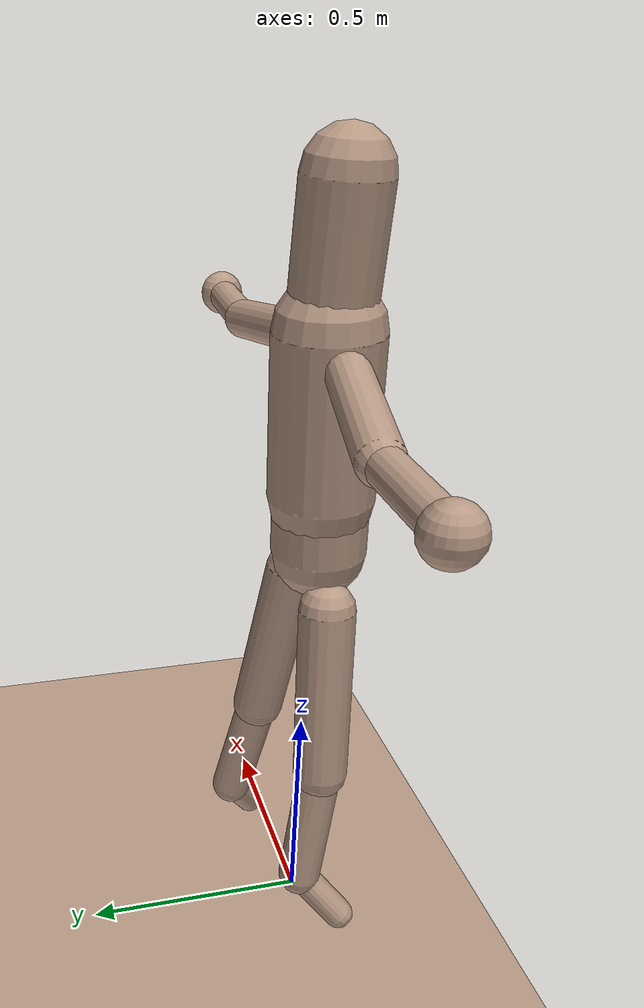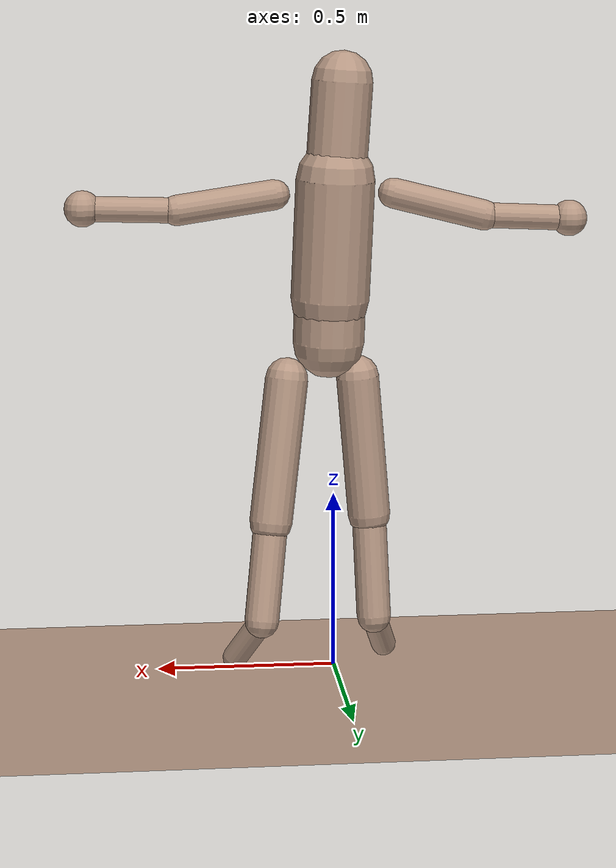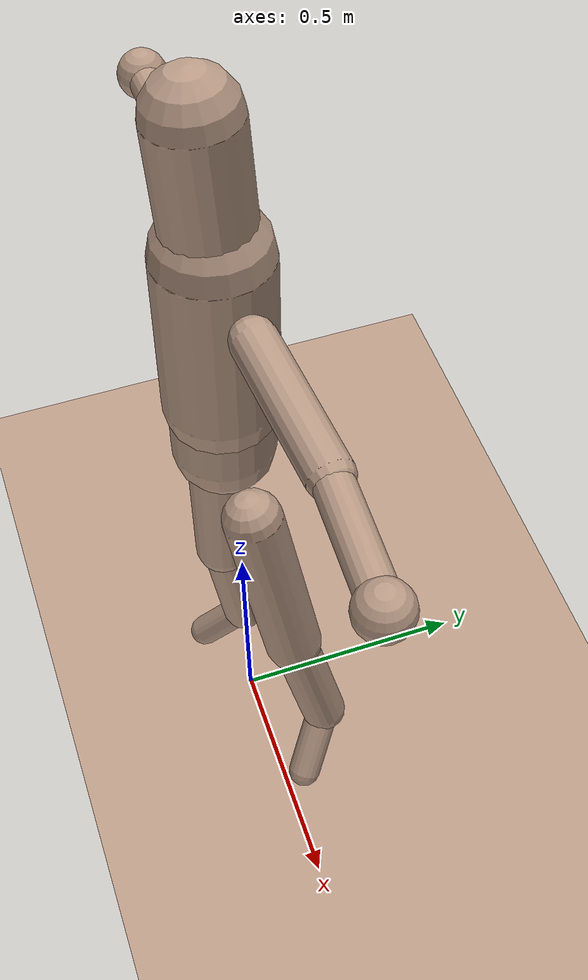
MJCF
<?xml version="1.0" ?>
<mujoco model="nick">
  <compiler angle="degree" autolimits="true"/>
  <option timestep="0.005" iterations="20" solver="Newton" integrator="implicitfast"/>
  <default>
    <geom type="capsule" condim="3" friction="1.0 0.05 0.05" rgba="0.72 0.60 0.52 1" density="0"/>
    <joint type="hinge" damping="2" stiffness="0" armature="0.02" limited="true"/>
    <position ctrllimited="true" dampratio="1"/>
  </default>
  <asset>
    <texture name="grid" type="2d" builtin="checker" rgb1="0.24 0.26 0.28" rgb2="0.20 0.22 0.24" width="512" height="512"/>
    <material name="grid" texture="grid" texrepeat="8 8" reflectance="0.05"/>
  </asset>
  <worldbody>
    <light pos="0 0 4" dir="0 0 -1" directional="true"/>
    <geom name="floor" type="plane" size="20 20 0.1" material="grid" condim="3" friction="1.0 0.05 0.05"/>
    <body name="Pelvis" pos="0.01240 -0.02042 0.93203">
      <freejoint name="root"/>
      <geom name="g_Pelvis" fromto="0.00000 0.00000 0.00000 -0.00391 0.00265 0.12332" size="0.1000" mass="10.2941"/>
      <body name="Torso" pos="-0.00391 0.00265 0.12332">
        <geom name="g_Torso" fromto="0.00000 0.00000 0.00000 -0.01428 0.00717 0.33398" size="0.1100" mass="24.2647"/>
        <joint name="Torso_pitch" axis="1 0 0" range="-30 30"/>
        <joint name="Torso_roll" axis="0 1 0" range="-20 20"/>
        <joint name="Torso_yaw" axis="0 0 1" range="-35 35"/>
        <body name="Head" pos="-0.01428 0.00717 0.33398">
          <geom name="g_Head" fromto="0.00000 0.00000 0.00000 -0.01976 -0.00956 0.26861" size="0.0850" mass="5.1471"/>
          <joint name="Head_pitch" axis="1 0 0" range="-40 40"/>
          <joint name="Head_roll" axis="0 1 0" range="-30 30"/>
          <joint name="Head_yaw" axis="0 0 1" range="-45 45"/>
        </body>
        <body name="UpperArmL" pos="0.15558 0.02332 0.29620">
          <geom name="g_UpperArmL" fromto="0.00000 0.00000 0.00000 0.27108 0.03411 -0.03483" size="0.0420" mass="2.2059"/>
          <joint name="UpperArmL_pitch" axis="1 0 0" range="-60 120"/>
          <joint name="UpperArmL_roll" axis="0 1 0" range="-90 20"/>
          <joint name="UpperArmL_yaw" axis="0 0 1" range="-60 60"/>
          <body name="ForearmL" pos="0.27108 0.03411 -0.03483">
            <geom name="g_ForearmL" fromto="0.00000 0.00000 0.00000 0.25441 -0.00946 0.00675" size="0.0350" mass="1.4706"/>
            <joint name="ForearmL_pitch" axis="1 0 0" range="0 140"/>
            <body name="GloveL" pos="0.25441 -0.00946 0.00675">
              <geom name="g_GloveL" type="sphere" pos="0 0 0" size="0.0500" mass="0.7353"/>
              <joint name="GloveL_pitch" axis="1 0 0" range="-60 60"/>
              <joint name="GloveL_yaw" axis="0 0 1" range="-25 25"/>
            </body>
          </body>
        </body>
        <body name="UpperArmR" pos="-0.17256 0.02333 0.29620">
          <geom name="g_UpperArmR" fromto="0.00000 0.00000 0.00000 -0.24885 0.03415 -0.06023" size="0.0420" mass="2.2059"/>
          <joint name="UpperArmR_pitch" axis="1 0 0" range="-60 120"/>
          <joint name="UpperArmR_roll" axis="0 1 0" range="-20 90"/>
          <joint name="UpperArmR_yaw" axis="0 0 1" range="-60 60"/>
          <body name="ForearmR" pos="-0.24885 0.03415 -0.06023">
            <geom name="g_ForearmR" fromto="0.00000 0.00000 0.00000 -0.23853 -0.00767 -0.01230" size="0.0350" mass="1.4706"/>
            <joint name="ForearmR_pitch" axis="1 0 0" range="0 140"/>
            <body name="GloveR" pos="-0.23853 -0.00767 -0.01230">
              <geom name="g_GloveR" type="sphere" pos="0 0 0" size="0.0500" mass="0.7353"/>
              <joint name="GloveR_pitch" axis="1 0 0" range="-60 60"/>
              <joint name="GloveR_yaw" axis="0 0 1" range="-25 25"/>
            </body>
          </body>
        </body>
      </body>
      <body name="ThighL" pos="0.11895 0.01464 -0.09920">
        <geom name="g_ThighL" fromto="0.00000 0.00000 0.00000 0.05097 0.05857 -0.39682" size="0.0600" mass="8.4559"/>
        <joint name="ThighL_pitch" axis="1 0 0" range="-110 20"/>
        <joint name="ThighL_roll" axis="0 1 0" range="-20 45"/>
        <joint name="ThighL_yaw" axis="0 0 1" range="-30 30"/>
        <body name="ShinL" pos="0.05097 0.05857 -0.39682">
          <geom name="g_ShinL" fromto="0.00000 0.00000 0.00000 0.03126 0.05669 -0.26895" size="0.0480" mass="3.6765"/>
          <joint name="ShinL_pitch" axis="1 0 0" range="0 130"/>
          <body name="FootL" pos="0.03126 0.05669 -0.26895">
            <geom name="g_FootL" fromto="0.00000 0.00000 0.00000 0.07074 -0.06987 -0.12515" size="0.0350" mass="1.1029"/>
            <joint name="FootL_pitch" axis="1 0 0" range="-40 25"/>
            <joint name="FootL_roll" axis="0 1 0" range="-20 20"/>
          </body>
        </body>
      </body>
      <body name="ThighR" pos="-0.08148 0.00117 -0.09927">
        <geom name="g_ThighR" fromto="0.00000 0.00000 0.00000 -0.03273 0.00468 -0.39709" size="0.0600" mass="8.4559"/>
        <joint name="ThighR_pitch" axis="1 0 0" range="-110 20"/>
        <joint name="ThighR_roll" axis="0 1 0" range="-45 20"/>
        <joint name="ThighR_yaw" axis="0 0 1" range="-30 30"/>
        <body name="ShinR" pos="-0.03273 0.00468 -0.39709">
          <geom name="g_ShinR" fromto="0.00000 0.00000 0.00000 -0.01007 0.03816 -0.28968" size="0.0480" mass="3.6765"/>
          <joint name="ShinR_pitch" axis="1 0 0" range="0 130"/>
          <body name="FootR" pos="-0.01007 0.03816 -0.28968">
            <geom name="g_FootR" fromto="0.00000 0.00000 0.00000 -0.03954 -0.09001 -0.11098" size="0.0350" mass="1.1029"/>
            <joint name="FootR_pitch" axis="1 0 0" range="-40 25"/>
            <joint name="FootR_roll" axis="0 1 0" range="-20 20"/>
          </body>
        </body>
      </body>
    </body>
  </worldbody>
  <actuator>
    <position name="a_Torso_pitch" joint="Torso_pitch" kp="400" ctrlrange="-0.523599 0.523599"/>
    <position name="a_Torso_roll" joint="Torso_roll" kp="400" ctrlrange="-0.349066 0.349066"/>
    <position name="a_Torso_yaw" joint="Torso_yaw" kp="400" ctrlrange="-0.610865 0.610865"/>
    <position name="a_Head_pitch" joint="Head_pitch" kp="60" ctrlrange="-0.698132 0.698132"/>
    <position name="a_Head_roll" joint="Head_roll" kp="60" ctrlrange="-0.523599 0.523599"/>
    <position name="a_Head_yaw" joint="Head_yaw" kp="60" ctrlrange="-0.785398 0.785398"/>
    <position name="a_ThighL_pitch" joint="ThighL_pitch" kp="500" ctrlrange="-1.919862 0.349066"/>
    <position name="a_ThighL_roll" joint="ThighL_roll" kp="500" ctrlrange="-0.349066 0.785398"/>
    <position name="a_ThighL_yaw" joint="ThighL_yaw" kp="500" ctrlrange="-0.523599 0.523599"/>
    <position name="a_ShinL_pitch" joint="ShinL_pitch" kp="400" ctrlrange="0.000000 2.268928"/>
    <position name="a_FootL_pitch" joint="FootL_pitch" kp="200" ctrlrange="-0.698132 0.436332"/>
    <position name="a_FootL_roll" joint="FootL_roll" kp="200" ctrlrange="-0.349066 0.349066"/>
    <position name="a_ThighR_pitch" joint="ThighR_pitch" kp="500" ctrlrange="-1.919862 0.349066"/>
    <position name="a_ThighR_roll" joint="ThighR_roll" kp="500" ctrlrange="-0.785398 0.349066"/>
    <position name="a_ThighR_yaw" joint="ThighR_yaw" kp="500" ctrlrange="-0.523599 0.523599"/>
    <position name="a_ShinR_pitch" joint="ShinR_pitch" kp="400" ctrlrange="0.000000 2.268928"/>
    <position name="a_FootR_pitch" joint="FootR_pitch" kp="200" ctrlrange="-0.698132 0.436332"/>
    <position name="a_FootR_roll" joint="FootR_roll" kp="200" ctrlrange="-0.349066 0.349066"/>
    <position name="a_UpperArmL_pitch" joint="UpperArmL_pitch" kp="100" ctrlrange="-1.047198 2.094395"/>
    <position name="a_UpperArmL_roll" joint="UpperArmL_roll" kp="100" ctrlrange="-1.570796 0.349066"/>
    <position name="a_UpperArmL_yaw" joint="UpperArmL_yaw" kp="100" ctrlrange="-1.047198 1.047198"/>
    <position name="a_ForearmL_pitch" joint="ForearmL_pitch" kp="60" ctrlrange="0.000000 2.443461"/>
    <position name="a_GloveL_pitch" joint="GloveL_pitch" kp="20" ctrlrange="-1.047198 1.047198"/>
    <position name="a_GloveL_yaw" joint="GloveL_yaw" kp="20" ctrlrange="-0.436332 0.436332"/>
    <position name="a_UpperArmR_pitch" joint="UpperArmR_pitch" kp="100" ctrlrange="-1.047198 2.094395"/>
    <position name="a_UpperArmR_roll" joint="UpperArmR_roll" kp="100" ctrlrange="-0.349066 1.570796"/>
    <position name="a_UpperArmR_yaw" joint="UpperArmR_yaw" kp="100" ctrlrange="-1.047198 1.047198"/>
    <position name="a_ForearmR_pitch" joint="ForearmR_pitch" kp="60" ctrlrange="0.000000 2.443461"/>
    <position name="a_GloveR_pitch" joint="GloveR_pitch" kp="20" ctrlrange="-1.047198 1.047198"/>
    <position name="a_GloveR_yaw" joint="GloveR_yaw" kp="20" ctrlrange="-0.436332 0.436332"/>
  </actuator>
  <sensor>
    <framepos name="s_FootL_pos" objtype="body" objname="FootL"/>
    <framepos name="s_FootR_pos" objtype="body" objname="FootR"/>
    <framepos name="s_Head_pos" objtype="body" objname="Head"/>
    <framezaxis name="s_Pelvis_up" objtype="body" objname="Pelvis"/>
    <subtreecom name="s_com" body="Pelvis"/>
  </sensor>
</mujoco>
